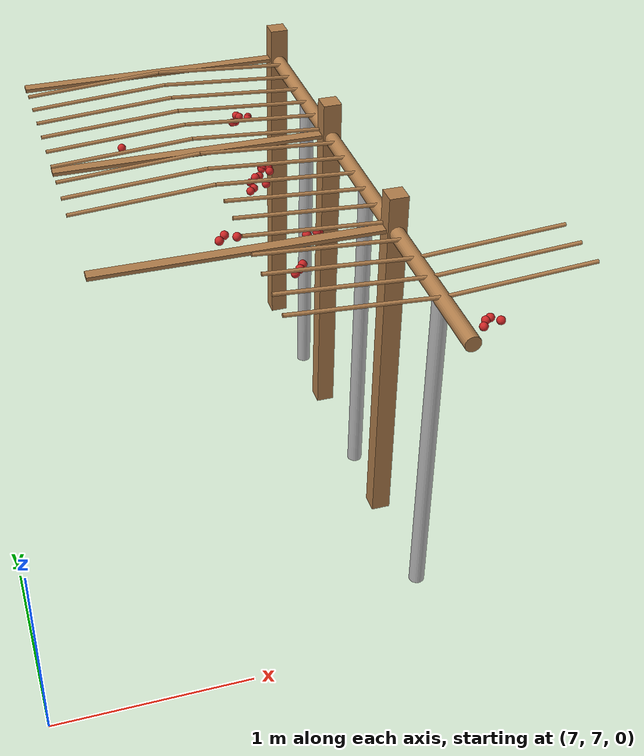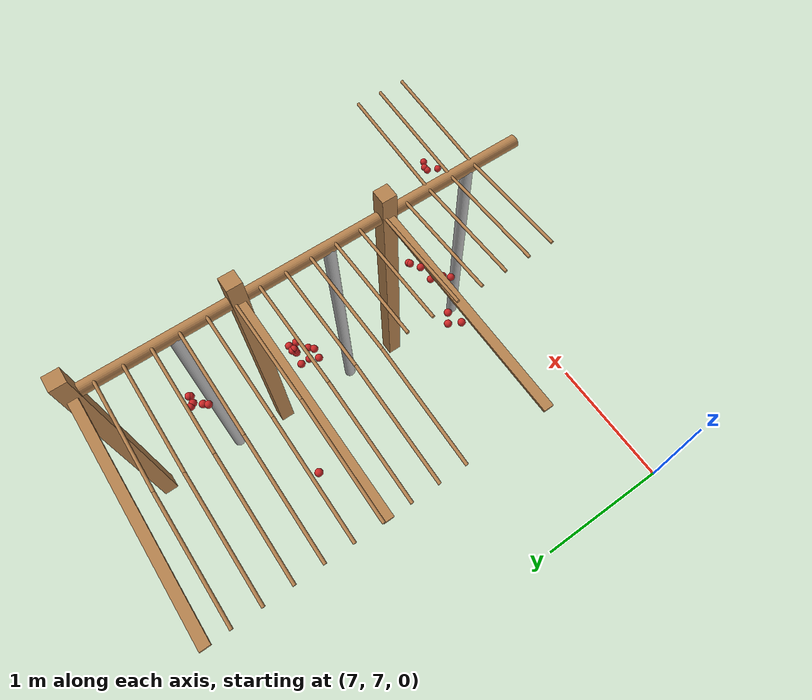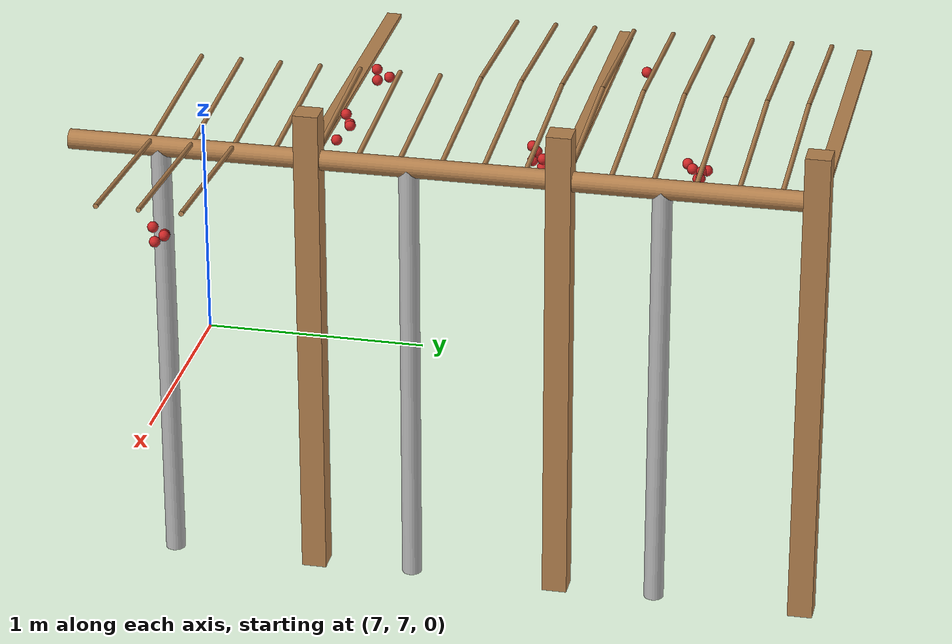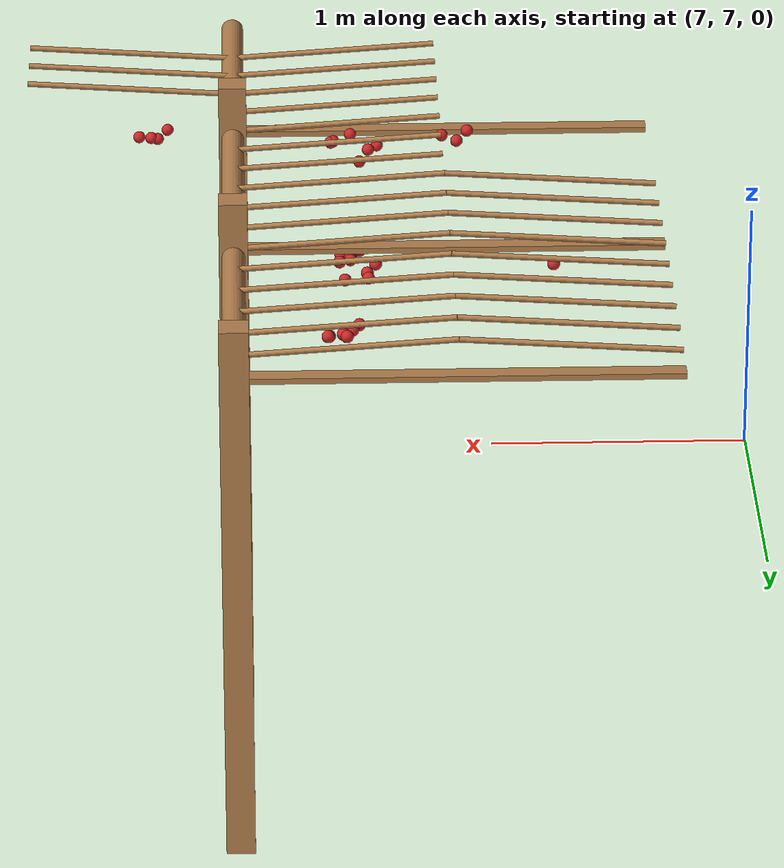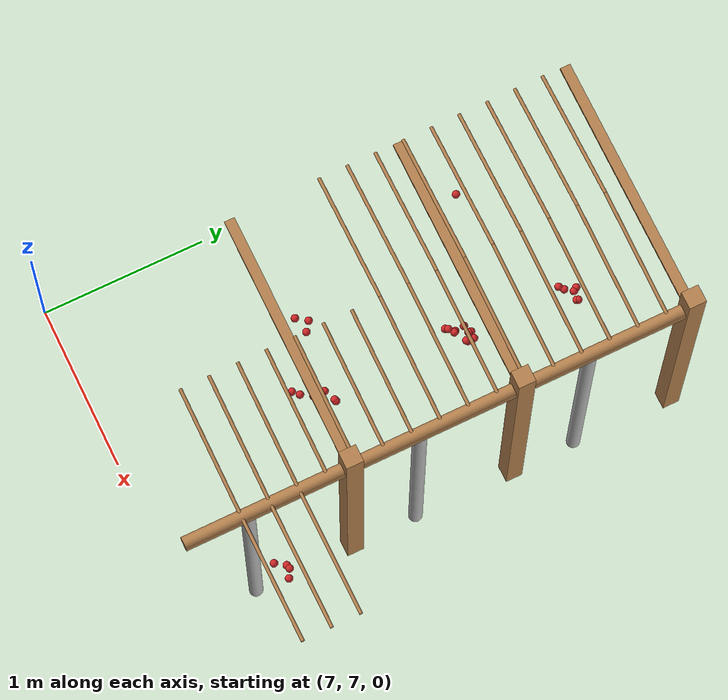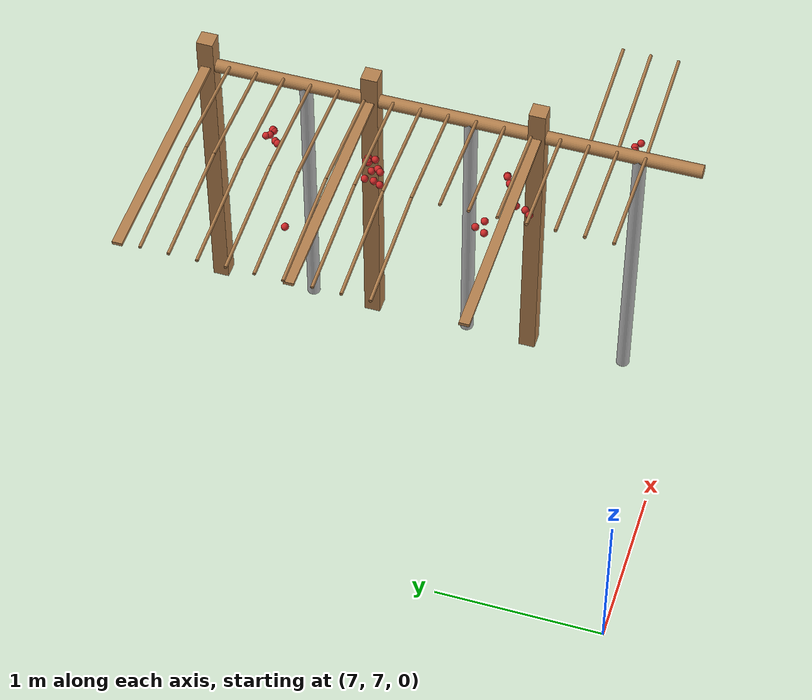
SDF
<sdf version="1.4">
 <model name="pergola">
  <include><name>post_74</name><pose>9.0 8.0 0 0 0 0</pose><uri>model://post</uri></include>
  <include><name>post_75</name><pose>9.0 9.0 0 0 0 0</pose><uri>model://post</uri></include>
  <include><name>post_76</name><pose>9.0 10.0 0 0 0 0</pose><uri>model://post</uri></include>
  <link name="beam_63">
   <pose>8.25 8.0 1.81 0 0 0</pose>
   <collision name="collision"><geometry><box><size>1.5 0.06 0.02</size></box></geometry></collision>
   <visual name="visual">
    <geometry><box><size>1.5 0.06 0.02</size></box></geometry>
    <material><script><name>Gazebo/Wood</name></script></material>
   </visual>
   <inertial>
    <mass>5</mass>
    <inertia>
     <ixx>0.0016666666666666668</ixx>
     <ixy>0.0</ixy>
     <ixz>0.0</ixz>
     <iyy>0.9390000000000001</iyy>
     <iyz>0.0</iyz>
     <izz>0.9376666666666665</izz>
    </inertia>
   </inertial>
  </link>
  <link name="beam_64">
   <pose>8.25 9.0 1.81 0 0 0</pose>
   <collision name="collision"><geometry><box><size>1.5 0.06 0.02</size></box></geometry></collision>
   <visual name="visual">
    <geometry><box><size>1.5 0.06 0.02</size></box></geometry>
    <material><script><name>Gazebo/Wood</name></script></material>
   </visual>
   <inertial>
    <mass>5</mass>
    <inertia>
     <ixx>0.0016666666666666668</ixx>
     <ixy>0.0</ixy>
     <ixz>0.0</ixz>
     <iyy>0.9390000000000001</iyy>
     <iyz>0.0</iyz>
     <izz>0.9376666666666665</izz>
    </inertia>
   </inertial>
  </link>
  <link name="beam_65">
   <pose>8.25 10.0 1.81 0 0 0</pose>
   <collision name="collision"><geometry><box><size>1.5 0.06 0.02</size></box></geometry></collision>
   <visual name="visual">
    <geometry><box><size>1.5 0.06 0.02</size></box></geometry>
    <material><script><name>Gazebo/Wood</name></script></material>
   </visual>
   <inertial>
    <mass>5</mass>
    <inertia>
     <ixx>0.0016666666666666668</ixx>
     <ixy>0.0</ixy>
     <ixz>0.0</ixz>
     <iyy>0.9390000000000001</iyy>
     <iyz>0.0</iyz>
     <izz>0.9376666666666665</izz>
    </inertia>
   </inertial>
  </link>
  <include><name>tree_67</name><pose>9.0 7.4 0 0 0 0</pose><uri>model://tree_trunk</uri></include>
  <include><name>tree_68</name><pose>9.0 8.4 0 0 0 0</pose><uri>model://tree_trunk</uri></include>
  <include><name>tree_69</name><pose>9.0 9.4 0 0 0 0</pose><uri>model://tree_trunk</uri></include>
  <link name="baseBranch_67">
   <pose>9.0 7.5 1.8 1.5707963267948966 0 0</pose>
   <collision name="collision">
    <geometry><cylinder><radius>0.04</radius><length>0.94</length></cylinder></geometry>
   </collision>
   <visual name="visual">
    <geometry><cylinder><radius>0.04</radius><length>0.94</length></cylinder></geometry>
    <material><script><name>Gazebo/WoodFloor</name></script></material>
   </visual>
   <inertial>
    <mass>10</mass>
    <inertia>
     <ixx>0.7403333333333334</ixx>
     <ixy>0.0</ixy>
     <ixz>0.0</ixz>
     <iyy>0.7403333333333334</iyy>
     <iyz>0.0</iyz>
     <izz>0.008</izz>
    </inertia>
   </inertial>
  </link>
  <link name="baseBranch_68">
   <pose>9.0 8.5 1.8 1.5707963267948966 0 0</pose>
   <collision name="collision">
    <geometry><cylinder><radius>0.04</radius><length>0.94</length></cylinder></geometry>
   </collision>
   <visual name="visual">
    <geometry><cylinder><radius>0.04</radius><length>0.94</length></cylinder></geometry>
    <material><script><name>Gazebo/WoodFloor</name></script></material>
   </visual>
   <inertial>
    <mass>10</mass>
    <inertia>
     <ixx>0.7403333333333334</ixx>
     <ixy>0.0</ixy>
     <ixz>0.0</ixz>
     <iyy>0.7403333333333334</iyy>
     <iyz>0.0</iyz>
     <izz>0.008</izz>
    </inertia>
   </inertial>
  </link>
  <link name="baseBranch_69">
   <pose>9.0 9.5 1.8 1.5707963267948966 0 0</pose>
   <collision name="collision">
    <geometry><cylinder><radius>0.04</radius><length>0.94</length></cylinder></geometry>
   </collision>
   <visual name="visual">
    <geometry><cylinder><radius>0.04</radius><length>0.94</length></cylinder></geometry>
    <material><script><name>Gazebo/WoodFloor</name></script></material>
   </visual>
   <inertial>
    <mass>10</mass>
    <inertia>
     <ixx>0.7403333333333334</ixx>
     <ixy>0.0</ixy>
     <ixz>0.0</ixz>
     <iyy>0.7403333333333334</iyy>
     <iyz>0.0</iyz>
     <izz>0.008</izz>
    </inertia>
   </inertial>
  </link>
  <link name="vine_689">
   <pose>8.625 7.363333333333333 1.85 0 -1.5042281630190728 0</pose>
   <collision name="collision">
    <geometry><cylinder><radius>0.01</radius><length>0.7516648189186453</length></cylinder></geometry>
   </collision>
   <visual name="visual">
    <geometry><cylinder><radius>0.01</radius><length>0.7516648189186453</length></cylinder></geometry>
    <material><script><name>Gazebo/WoodFloor</name></script></material>
   </visual>
   <inertial>
    <mass>5</mass>
    <inertia>
     <ixx>0.23554166666666657</ixx>
     <ixy>0.0</ixy>
     <ixz>0.0</ixz>
     <iyy>0.23554166666666657</iyy>
     <iyz>0.0</iyz>
     <izz>0.00025</izz>
    </inertia>
   </inertial>
  </link>
  <link name="vine_691">
   <pose>8.625 7.53 1.85 0 -1.5042281630190728 0</pose>
   <collision name="collision">
    <geometry><cylinder><radius>0.01</radius><length>0.7516648189186453</length></cylinder></geometry>
   </collision>
   <visual name="visual">
    <geometry><cylinder><radius>0.01</radius><length>0.7516648189186453</length></cylinder></geometry>
    <material><script><name>Gazebo/WoodFloor</name></script></material>
   </visual>
   <inertial>
    <mass>5</mass>
    <inertia>
     <ixx>0.23554166666666657</ixx>
     <ixy>0.0</ixy>
     <ixz>0.0</ixz>
     <iyy>0.23554166666666657</iyy>
     <iyz>0.0</iyz>
     <izz>0.00025</izz>
    </inertia>
   </inertial>
  </link>
  <link name="vine_693">
   <pose>8.625 7.696666666666666 1.85 0 -1.5042281630190728 0</pose>
   <collision name="collision">
    <geometry><cylinder><radius>0.01</radius><length>0.7516648189186453</length></cylinder></geometry>
   </collision>
   <visual name="visual">
    <geometry><cylinder><radius>0.01</radius><length>0.7516648189186453</length></cylinder></geometry>
    <material><script><name>Gazebo/WoodFloor</name></script></material>
   </visual>
   <inertial>
    <mass>5</mass>
    <inertia>
     <ixx>0.23554166666666657</ixx>
     <ixy>0.0</ixy>
     <ixz>0.0</ixz>
     <iyy>0.23554166666666657</iyy>
     <iyz>0.0</iyz>
     <izz>0.00025</izz>
    </inertia>
   </inertial>
  </link>
  <link name="vine_695">
   <pose>8.625 7.863333333333333 1.85 0 -1.5042281630190728 0</pose>
   <collision name="collision">
    <geometry><cylinder><radius>0.01</radius><length>0.7516648189186453</length></cylinder></geometry>
   </collision>
   <visual name="visual">
    <geometry><cylinder><radius>0.01</radius><length>0.7516648189186453</length></cylinder></geometry>
    <material><script><name>Gazebo/WoodFloor</name></script></material>
   </visual>
   <inertial>
    <mass>5</mass>
    <inertia>
     <ixx>0.23554166666666657</ixx>
     <ixy>0.0</ixy>
     <ixz>0.0</ixz>
     <iyy>0.23554166666666657</iyy>
     <iyz>0.0</iyz>
     <izz>0.00025</izz>
    </inertia>
   </inertial>
  </link>
  <link name="vine_697">
   <pose>8.625 8.03 1.85 0 -1.5042281630190728 0</pose>
   <collision name="collision">
    <geometry><cylinder><radius>0.01</radius><length>0.7516648189186453</length></cylinder></geometry>
   </collision>
   <visual name="visual">
    <geometry><cylinder><radius>0.01</radius><length>0.7516648189186453</length></cylinder></geometry>
    <material><script><name>Gazebo/WoodFloor</name></script></material>
   </visual>
   <inertial>
    <mass>5</mass>
    <inertia>
     <ixx>0.23554166666666657</ixx>
     <ixy>0.0</ixy>
     <ixz>0.0</ixz>
     <iyy>0.23554166666666657</iyy>
     <iyz>0.0</iyz>
     <izz>0.00025</izz>
    </inertia>
   </inertial>
  </link>
  <link name="vine_699">
   <pose>8.625 8.196666666666665 1.85 0 -1.5042281630190728 0</pose>
   <collision name="collision">
    <geometry><cylinder><radius>0.01</radius><length>0.7516648189186453</length></cylinder></geometry>
   </collision>
   <visual name="visual">
    <geometry><cylinder><radius>0.01</radius><length>0.7516648189186453</length></cylinder></geometry>
    <material><script><name>Gazebo/WoodFloor</name></script></material>
   </visual>
   <inertial>
    <mass>5</mass>
    <inertia>
     <ixx>0.23554166666666657</ixx>
     <ixy>0.0</ixy>
     <ixz>0.0</ixz>
     <iyy>0.23554166666666657</iyy>
     <iyz>0.0</iyz>
     <izz>0.00025</izz>
    </inertia>
   </inertial>
  </link>
  <link name="vine_701">
   <pose>8.625 8.363333333333332 1.85 0 -1.5042281630190728 0</pose>
   <collision name="collision">
    <geometry><cylinder><radius>0.01</radius><length>0.7516648189186453</length></cylinder></geometry>
   </collision>
   <visual name="visual">
    <geometry><cylinder><radius>0.01</radius><length>0.7516648189186453</length></cylinder></geometry>
    <material><script><name>Gazebo/WoodFloor</name></script></material>
   </visual>
   <inertial>
    <mass>5</mass>
    <inertia>
     <ixx>0.23554166666666657</ixx>
     <ixy>0.0</ixy>
     <ixz>0.0</ixz>
     <iyy>0.23554166666666657</iyy>
     <iyz>0.0</iyz>
     <izz>0.00025</izz>
    </inertia>
   </inertial>
  </link>
  <link name="vine_702">
   <pose>7.875 8.53 1.85 0 1.5042281630190728 0</pose>
   <collision name="collision">
    <geometry><cylinder><radius>0.01</radius><length>0.7516648189186453</length></cylinder></geometry>
   </collision>
   <visual name="visual">
    <geometry><cylinder><radius>0.01</radius><length>0.7516648189186453</length></cylinder></geometry>
    <material><script><name>Gazebo/WoodFloor</name></script></material>
   </visual>
   <inertial>
    <mass>5</mass>
    <inertia>
     <ixx>0.23554166666666657</ixx>
     <ixy>0.0</ixy>
     <ixz>0.0</ixz>
     <iyy>0.23554166666666657</iyy>
     <iyz>0.0</iyz>
     <izz>0.00025</izz>
    </inertia>
   </inertial>
  </link>
  <link name="vine_703">
   <pose>8.625 8.53 1.85 0 -1.5042281630190728 0</pose>
   <collision name="collision">
    <geometry><cylinder><radius>0.01</radius><length>0.7516648189186453</length></cylinder></geometry>
   </collision>
   <visual name="visual">
    <geometry><cylinder><radius>0.01</radius><length>0.7516648189186453</length></cylinder></geometry>
    <material><script><name>Gazebo/WoodFloor</name></script></material>
   </visual>
   <inertial>
    <mass>5</mass>
    <inertia>
     <ixx>0.23554166666666657</ixx>
     <ixy>0.0</ixy>
     <ixz>0.0</ixz>
     <iyy>0.23554166666666657</iyy>
     <iyz>0.0</iyz>
     <izz>0.00025</izz>
    </inertia>
   </inertial>
  </link>
  <link name="vine_704">
   <pose>7.875 8.696666666666665 1.85 0 1.5042281630190728 0</pose>
   <collision name="collision">
    <geometry><cylinder><radius>0.01</radius><length>0.7516648189186453</length></cylinder></geometry>
   </collision>
   <visual name="visual">
    <geometry><cylinder><radius>0.01</radius><length>0.7516648189186453</length></cylinder></geometry>
    <material><script><name>Gazebo/WoodFloor</name></script></material>
   </visual>
   <inertial>
    <mass>5</mass>
    <inertia>
     <ixx>0.23554166666666657</ixx>
     <ixy>0.0</ixy>
     <ixz>0.0</ixz>
     <iyy>0.23554166666666657</iyy>
     <iyz>0.0</iyz>
     <izz>0.00025</izz>
    </inertia>
   </inertial>
  </link>
  <link name="vine_705">
   <pose>8.625 8.696666666666665 1.85 0 -1.5042281630190728 0</pose>
   <collision name="collision">
    <geometry><cylinder><radius>0.01</radius><length>0.7516648189186453</length></cylinder></geometry>
   </collision>
   <visual name="visual">
    <geometry><cylinder><radius>0.01</radius><length>0.7516648189186453</length></cylinder></geometry>
    <material><script><name>Gazebo/WoodFloor</name></script></material>
   </visual>
   <inertial>
    <mass>5</mass>
    <inertia>
     <ixx>0.23554166666666657</ixx>
     <ixy>0.0</ixy>
     <ixz>0.0</ixz>
     <iyy>0.23554166666666657</iyy>
     <iyz>0.0</iyz>
     <izz>0.00025</izz>
    </inertia>
   </inertial>
  </link>
  <link name="vine_706">
   <pose>7.875 8.863333333333332 1.85 0 1.5042281630190728 0</pose>
   <collision name="collision">
    <geometry><cylinder><radius>0.01</radius><length>0.7516648189186453</length></cylinder></geometry>
   </collision>
   <visual name="visual">
    <geometry><cylinder><radius>0.01</radius><length>0.7516648189186453</length></cylinder></geometry>
    <material><script><name>Gazebo/WoodFloor</name></script></material>
   </visual>
   <inertial>
    <mass>5</mass>
    <inertia>
     <ixx>0.23554166666666657</ixx>
     <ixy>0.0</ixy>
     <ixz>0.0</ixz>
     <iyy>0.23554166666666657</iyy>
     <iyz>0.0</iyz>
     <izz>0.00025</izz>
    </inertia>
   </inertial>
  </link>
  <link name="vine_707">
   <pose>8.625 8.863333333333332 1.85 0 -1.5042281630190728 0</pose>
   <collision name="collision">
    <geometry><cylinder><radius>0.01</radius><length>0.7516648189186453</length></cylinder></geometry>
   </collision>
   <visual name="visual">
    <geometry><cylinder><radius>0.01</radius><length>0.7516648189186453</length></cylinder></geometry>
    <material><script><name>Gazebo/WoodFloor</name></script></material>
   </visual>
   <inertial>
    <mass>5</mass>
    <inertia>
     <ixx>0.23554166666666657</ixx>
     <ixy>0.0</ixy>
     <ixz>0.0</ixz>
     <iyy>0.23554166666666657</iyy>
     <iyz>0.0</iyz>
     <izz>0.00025</izz>
    </inertia>
   </inertial>
  </link>
  <link name="vine_708">
   <pose>7.875 9.03 1.85 0 1.5042281630190728 0</pose>
   <collision name="collision">
    <geometry><cylinder><radius>0.01</radius><length>0.7516648189186453</length></cylinder></geometry>
   </collision>
   <visual name="visual">
    <geometry><cylinder><radius>0.01</radius><length>0.7516648189186453</length></cylinder></geometry>
    <material><script><name>Gazebo/WoodFloor</name></script></material>
   </visual>
   <inertial>
    <mass>5</mass>
    <inertia>
     <ixx>0.23554166666666657</ixx>
     <ixy>0.0</ixy>
     <ixz>0.0</ixz>
     <iyy>0.23554166666666657</iyy>
     <iyz>0.0</iyz>
     <izz>0.00025</izz>
    </inertia>
   </inertial>
  </link>
  <link name="vine_709">
   <pose>8.625 9.03 1.85 0 -1.5042281630190728 0</pose>
   <collision name="collision">
    <geometry><cylinder><radius>0.01</radius><length>0.7516648189186453</length></cylinder></geometry>
   </collision>
   <visual name="visual">
    <geometry><cylinder><radius>0.01</radius><length>0.7516648189186453</length></cylinder></geometry>
    <material><script><name>Gazebo/WoodFloor</name></script></material>
   </visual>
   <inertial>
    <mass>5</mass>
    <inertia>
     <ixx>0.23554166666666657</ixx>
     <ixy>0.0</ixy>
     <ixz>0.0</ixz>
     <iyy>0.23554166666666657</iyy>
     <iyz>0.0</iyz>
     <izz>0.00025</izz>
    </inertia>
   </inertial>
  </link>
  <link name="vine_710">
   <pose>7.875 9.196666666666665 1.85 0 1.5042281630190728 0</pose>
   <collision name="collision">
    <geometry><cylinder><radius>0.01</radius><length>0.7516648189186453</length></cylinder></geometry>
   </collision>
   <visual name="visual">
    <geometry><cylinder><radius>0.01</radius><length>0.7516648189186453</length></cylinder></geometry>
    <material><script><name>Gazebo/WoodFloor</name></script></material>
   </visual>
   <inertial>
    <mass>5</mass>
    <inertia>
     <ixx>0.23554166666666657</ixx>
     <ixy>0.0</ixy>
     <ixz>0.0</ixz>
     <iyy>0.23554166666666657</iyy>
     <iyz>0.0</iyz>
     <izz>0.00025</izz>
    </inertia>
   </inertial>
  </link>
  <link name="vine_711">
   <pose>8.625 9.196666666666665 1.85 0 -1.5042281630190728 0</pose>
   <collision name="collision">
    <geometry><cylinder><radius>0.01</radius><length>0.7516648189186453</length></cylinder></geometry>
   </collision>
   <visual name="visual">
    <geometry><cylinder><radius>0.01</radius><length>0.7516648189186453</length></cylinder></geometry>
    <material><script><name>Gazebo/WoodFloor</name></script></material>
   </visual>
   <inertial>
    <mass>5</mass>
    <inertia>
     <ixx>0.23554166666666657</ixx>
     <ixy>0.0</ixy>
     <ixz>0.0</ixz>
     <iyy>0.23554166666666657</iyy>
     <iyz>0.0</iyz>
     <izz>0.00025</izz>
    </inertia>
   </inertial>
  </link>
  <link name="vine_712">
   <pose>7.875 9.363333333333332 1.85 0 1.5042281630190728 0</pose>
   <collision name="collision">
    <geometry><cylinder><radius>0.01</radius><length>0.7516648189186453</length></cylinder></geometry>
   </collision>
   <visual name="visual">
    <geometry><cylinder><radius>0.01</radius><length>0.7516648189186453</length></cylinder></geometry>
    <material><script><name>Gazebo/WoodFloor</name></script></material>
   </visual>
   <inertial>
    <mass>5</mass>
    <inertia>
     <ixx>0.23554166666666657</ixx>
     <ixy>0.0</ixy>
     <ixz>0.0</ixz>
     <iyy>0.23554166666666657</iyy>
     <iyz>0.0</iyz>
     <izz>0.00025</izz>
    </inertia>
   </inertial>
  </link>
  <link name="vine_713">
   <pose>8.625 9.363333333333332 1.85 0 -1.5042281630190728 0</pose>
   <collision name="collision">
    <geometry><cylinder><radius>0.01</radius><length>0.7516648189186453</length></cylinder></geometry>
   </collision>
   <visual name="visual">
    <geometry><cylinder><radius>0.01</radius><length>0.7516648189186453</length></cylinder></geometry>
    <material><script><name>Gazebo/WoodFloor</name></script></material>
   </visual>
   <inertial>
    <mass>5</mass>
    <inertia>
     <ixx>0.23554166666666657</ixx>
     <ixy>0.0</ixy>
     <ixz>0.0</ixz>
     <iyy>0.23554166666666657</iyy>
     <iyz>0.0</iyz>
     <izz>0.00025</izz>
    </inertia>
   </inertial>
  </link>
  <link name="vine_714">
   <pose>7.875 9.53 1.85 0 1.5042281630190728 0</pose>
   <collision name="collision">
    <geometry><cylinder><radius>0.01</radius><length>0.7516648189186453</length></cylinder></geometry>
   </collision>
   <visual name="visual">
    <geometry><cylinder><radius>0.01</radius><length>0.7516648189186453</length></cylinder></geometry>
    <material><script><name>Gazebo/WoodFloor</name></script></material>
   </visual>
   <inertial>
    <mass>5</mass>
    <inertia>
     <ixx>0.23554166666666657</ixx>
     <ixy>0.0</ixy>
     <ixz>0.0</ixz>
     <iyy>0.23554166666666657</iyy>
     <iyz>0.0</iyz>
     <izz>0.00025</izz>
    </inertia>
   </inertial>
  </link>
  <link name="vine_715">
   <pose>8.625 9.53 1.85 0 -1.5042281630190728 0</pose>
   <collision name="collision">
    <geometry><cylinder><radius>0.01</radius><length>0.7516648189186453</length></cylinder></geometry>
   </collision>
   <visual name="visual">
    <geometry><cylinder><radius>0.01</radius><length>0.7516648189186453</length></cylinder></geometry>
    <material><script><name>Gazebo/WoodFloor</name></script></material>
   </visual>
   <inertial>
    <mass>5</mass>
    <inertia>
     <ixx>0.23554166666666657</ixx>
     <ixy>0.0</ixy>
     <ixz>0.0</ixz>
     <iyy>0.23554166666666657</iyy>
     <iyz>0.0</iyz>
     <izz>0.00025</izz>
    </inertia>
   </inertial>
  </link>
  <link name="vine_716">
   <pose>7.875 9.696666666666665 1.85 0 1.5042281630190728 0</pose>
   <collision name="collision">
    <geometry><cylinder><radius>0.01</radius><length>0.7516648189186453</length></cylinder></geometry>
   </collision>
   <visual name="visual">
    <geometry><cylinder><radius>0.01</radius><length>0.7516648189186453</length></cylinder></geometry>
    <material><script><name>Gazebo/WoodFloor</name></script></material>
   </visual>
   <inertial>
    <mass>5</mass>
    <inertia>
     <ixx>0.23554166666666657</ixx>
     <ixy>0.0</ixy>
     <ixz>0.0</ixz>
     <iyy>0.23554166666666657</iyy>
     <iyz>0.0</iyz>
     <izz>0.00025</izz>
    </inertia>
   </inertial>
  </link>
  <link name="vine_717">
   <pose>8.625 9.696666666666665 1.85 0 -1.5042281630190728 0</pose>
   <collision name="collision">
    <geometry><cylinder><radius>0.01</radius><length>0.7516648189186453</length></cylinder></geometry>
   </collision>
   <visual name="visual">
    <geometry><cylinder><radius>0.01</radius><length>0.7516648189186453</length></cylinder></geometry>
    <material><script><name>Gazebo/WoodFloor</name></script></material>
   </visual>
   <inertial>
    <mass>5</mass>
    <inertia>
     <ixx>0.23554166666666657</ixx>
     <ixy>0.0</ixy>
     <ixz>0.0</ixz>
     <iyy>0.23554166666666657</iyy>
     <iyz>0.0</iyz>
     <izz>0.00025</izz>
    </inertia>
   </inertial>
  </link>
  <link name="vine_718">
   <pose>7.875 9.863333333333332 1.85 0 1.5042281630190728 0</pose>
   <collision name="collision">
    <geometry><cylinder><radius>0.01</radius><length>0.7516648189186453</length></cylinder></geometry>
   </collision>
   <visual name="visual">
    <geometry><cylinder><radius>0.01</radius><length>0.7516648189186453</length></cylinder></geometry>
    <material><script><name>Gazebo/WoodFloor</name></script></material>
   </visual>
   <inertial>
    <mass>5</mass>
    <inertia>
     <ixx>0.23554166666666657</ixx>
     <ixy>0.0</ixy>
     <ixz>0.0</ixz>
     <iyy>0.23554166666666657</iyy>
     <iyz>0.0</iyz>
     <izz>0.00025</izz>
    </inertia>
   </inertial>
  </link>
  <link name="vine_719">
   <pose>8.625 9.863333333333332 1.85 0 -1.5042281630190728 0</pose>
   <collision name="collision">
    <geometry><cylinder><radius>0.01</radius><length>0.7516648189186453</length></cylinder></geometry>
   </collision>
   <visual name="visual">
    <geometry><cylinder><radius>0.01</radius><length>0.7516648189186453</length></cylinder></geometry>
    <material><script><name>Gazebo/WoodFloor</name></script></material>
   </visual>
   <inertial>
    <mass>5</mass>
    <inertia>
     <ixx>0.23554166666666657</ixx>
     <ixy>0.0</ixy>
     <ixz>0.0</ixz>
     <iyy>0.23554166666666657</iyy>
     <iyz>0.0</iyz>
     <izz>0.00025</izz>
    </inertia>
   </inertial>
  </link>
  <link name="vine_808">
   <pose>9.375 7.363333333333333 1.85 0 1.5042281630190728 0</pose>
   <collision name="collision">
    <geometry><cylinder><radius>0.01</radius><length>0.7516648189186453</length></cylinder></geometry>
   </collision>
   <visual name="visual">
    <geometry><cylinder><radius>0.01</radius><length>0.7516648189186453</length></cylinder></geometry>
    <material><script><name>Gazebo/WoodFloor</name></script></material>
   </visual>
   <inertial>
    <mass>5</mass>
    <inertia>
     <ixx>0.23554166666666657</ixx>
     <ixy>0.0</ixy>
     <ixz>0.0</ixz>
     <iyy>0.23554166666666657</iyy>
     <iyz>0.0</iyz>
     <izz>0.00025</izz>
    </inertia>
   </inertial>
  </link>
  <link name="vine_810">
   <pose>9.375 7.53 1.85 0 1.5042281630190728 0</pose>
   <collision name="collision">
    <geometry><cylinder><radius>0.01</radius><length>0.7516648189186453</length></cylinder></geometry>
   </collision>
   <visual name="visual">
    <geometry><cylinder><radius>0.01</radius><length>0.7516648189186453</length></cylinder></geometry>
    <material><script><name>Gazebo/WoodFloor</name></script></material>
   </visual>
   <inertial>
    <mass>5</mass>
    <inertia>
     <ixx>0.23554166666666657</ixx>
     <ixy>0.0</ixy>
     <ixz>0.0</ixz>
     <iyy>0.23554166666666657</iyy>
     <iyz>0.0</iyz>
     <izz>0.00025</izz>
    </inertia>
   </inertial>
  </link>
  <link name="vine_812">
   <pose>9.375 7.696666666666666 1.85 0 1.5042281630190728 0</pose>
   <collision name="collision">
    <geometry><cylinder><radius>0.01</radius><length>0.7516648189186453</length></cylinder></geometry>
   </collision>
   <visual name="visual">
    <geometry><cylinder><radius>0.01</radius><length>0.7516648189186453</length></cylinder></geometry>
    <material><script><name>Gazebo/WoodFloor</name></script></material>
   </visual>
   <inertial>
    <mass>5</mass>
    <inertia>
     <ixx>0.23554166666666657</ixx>
     <ixy>0.0</ixy>
     <ixz>0.0</ixz>
     <iyy>0.23554166666666657</iyy>
     <iyz>0.0</iyz>
     <izz>0.00025</izz>
    </inertia>
   </inertial>
  </link>
  <link name="fruit_0">
   <pose>8.574796913874893 8.04895319028267 1.814411705865465 0 0 0</pose>
   <collision name="fruit_collision_0"><geometry><sphere><radius>0.022</radius></sphere></geometry></collision>
   <visual name="visual">
    <geometry><sphere><radius>0.022</radius></sphere></geometry>
    <material><script><name>Gazebo/Red</name></script></material>
   </visual>
   <inertial>
    <mass>0.05</mass>
    <inertia>
     <ixx>9.679999999999999e-06</ixx>
     <ixy>0.0</ixy>
     <ixz>0.0</ixz>
     <iyy>9.679999999999999e-06</iyy>
     <iyz>0.0</iyz>
     <izz>9.679999999999999e-06</izz>
    </inertia>
   </inertial>
   <sensor name="fruit_contact_0" type="contact">
    <contact><collision>fruit_collision_0</collision></contact>
   </sensor>
  </link>
  <link name="fruit_24">
   <pose>8.151789421558503 8.077275944412605 1.8368361129361965 0 0 0</pose>
   <collision name="fruit_collision_24"><geometry><sphere><radius>0.022</radius></sphere></geometry></collision>
   <visual name="visual">
    <geometry><sphere><radius>0.022</radius></sphere></geometry>
    <material><script><name>Gazebo/Red</name></script></material>
   </visual>
   <inertial>
    <mass>0.05</mass>
    <inertia>
     <ixx>9.679999999999999e-06</ixx>
     <ixy>0.0</ixy>
     <ixz>0.0</ixz>
     <iyy>9.679999999999999e-06</iyy>
     <iyz>0.0</iyz>
     <izz>9.679999999999999e-06</izz>
    </inertia>
   </inertial>
   <sensor name="fruit_contact_24" type="contact">
    <contact><collision>fruit_collision_24</collision></contact>
   </sensor>
  </link>
  <link name="fruit_39">
   <pose>8.500812690215426 8.795129883401557 1.64771932281716 0 0 0</pose>
   <collision name="fruit_collision_39"><geometry><sphere><radius>0.022</radius></sphere></geometry></collision>
   <visual name="visual">
    <geometry><sphere><radius>0.022</radius></sphere></geometry>
    <material><script><name>Gazebo/Red</name></script></material>
   </visual>
   <inertial>
    <mass>0.05</mass>
    <inertia>
     <ixx>9.679999999999999e-06</ixx>
     <ixy>0.0</ixy>
     <ixz>0.0</ixz>
     <iyy>9.679999999999999e-06</iyy>
     <iyz>0.0</iyz>
     <izz>9.679999999999999e-06</izz>
    </inertia>
   </inertial>
   <sensor name="fruit_contact_39" type="contact">
    <contact><collision>fruit_collision_39</collision></contact>
   </sensor>
  </link>
  <link name="fruit_57">
   <pose>8.528466705295422 8.799518841807481 1.7231837676563164 0 0 0</pose>
   <collision name="fruit_collision_57"><geometry><sphere><radius>0.022</radius></sphere></geometry></collision>
   <visual name="visual">
    <geometry><sphere><radius>0.022</radius></sphere></geometry>
    <material><script><name>Gazebo/Red</name></script></material>
   </visual>
   <inertial>
    <mass>0.05</mass>
    <inertia>
     <ixx>9.679999999999999e-06</ixx>
     <ixy>0.0</ixy>
     <ixz>0.0</ixz>
     <iyy>9.679999999999999e-06</iyy>
     <iyz>0.0</iyz>
     <izz>9.679999999999999e-06</izz>
    </inertia>
   </inertial>
   <sensor name="fruit_contact_57" type="contact">
    <contact><collision>fruit_collision_57</collision></contact>
   </sensor>
  </link>
  <link name="fruit_70">
   <pose>9.24542239678349 7.430190711310521 1.5652316612018242 0 0 0</pose>
   <collision name="fruit_collision_70"><geometry><sphere><radius>0.022</radius></sphere></geometry></collision>
   <visual name="visual">
    <geometry><sphere><radius>0.022</radius></sphere></geometry>
    <material><script><name>Gazebo/Red</name></script></material>
   </visual>
   <inertial>
    <mass>0.05</mass>
    <inertia>
     <ixx>9.679999999999999e-06</ixx>
     <ixy>0.0</ixy>
     <ixz>0.0</ixz>
     <iyy>9.679999999999999e-06</iyy>
     <iyz>0.0</iyz>
     <izz>9.679999999999999e-06</izz>
    </inertia>
   </inertial>
   <sensor name="fruit_contact_70" type="contact">
    <contact><collision>fruit_collision_70</collision></contact>
   </sensor>
  </link>
  <link name="fruit_80">
   <pose>8.572113782921647 9.431982974123219 1.7230544742244904 0 0 0</pose>
   <collision name="fruit_collision_80"><geometry><sphere><radius>0.022</radius></sphere></geometry></collision>
   <visual name="visual">
    <geometry><sphere><radius>0.022</radius></sphere></geometry>
    <material><script><name>Gazebo/Red</name></script></material>
   </visual>
   <inertial>
    <mass>0.05</mass>
    <inertia>
     <ixx>9.679999999999999e-06</ixx>
     <ixy>0.0</ixy>
     <ixz>0.0</ixz>
     <iyy>9.679999999999999e-06</iyy>
     <iyz>0.0</iyz>
     <izz>9.679999999999999e-06</izz>
    </inertia>
   </inertial>
   <sensor name="fruit_contact_80" type="contact">
    <contact><collision>fruit_collision_80</collision></contact>
   </sensor>
  </link>
  <link name="fruit_98">
   <pose>8.4744992170003 7.903336319685117 1.7040208222470623 0 0 0</pose>
   <collision name="fruit_collision_98"><geometry><sphere><radius>0.022</radius></sphere></geometry></collision>
   <visual name="visual">
    <geometry><sphere><radius>0.022</radius></sphere></geometry>
    <material><script><name>Gazebo/Red</name></script></material>
   </visual>
   <inertial>
    <mass>0.05</mass>
    <inertia>
     <ixx>9.679999999999999e-06</ixx>
     <ixy>0.0</ixy>
     <ixz>0.0</ixz>
     <iyy>9.679999999999999e-06</iyy>
     <iyz>0.0</iyz>
     <izz>9.679999999999999e-06</izz>
    </inertia>
   </inertial>
   <sensor name="fruit_contact_98" type="contact">
    <contact><collision>fruit_collision_98</collision></contact>
   </sensor>
  </link>
  <link name="fruit_157">
   <pose>8.67605473053997 9.489567828007408 1.7083965185265988 0 0 0</pose>
   <collision name="fruit_collision_157"><geometry><sphere><radius>0.022</radius></sphere></geometry></collision>
   <visual name="visual">
    <geometry><sphere><radius>0.022</radius></sphere></geometry>
    <material><script><name>Gazebo/Red</name></script></material>
   </visual>
   <inertial>
    <mass>0.05</mass>
    <inertia>
     <ixx>9.679999999999999e-06</ixx>
     <ixy>0.0</ixy>
     <ixz>0.0</ixz>
     <iyy>9.679999999999999e-06</iyy>
     <iyz>0.0</iyz>
     <izz>9.679999999999999e-06</izz>
    </inertia>
   </inertial>
   <sensor name="fruit_contact_157" type="contact">
    <contact><collision>fruit_collision_157</collision></contact>
   </sensor>
  </link>
  <link name="fruit_176">
   <pose>8.624165776546254 8.859545884156107 1.713637087324998 0 0 0</pose>
   <collision name="fruit_collision_176"><geometry><sphere><radius>0.022</radius></sphere></geometry></collision>
   <visual name="visual">
    <geometry><sphere><radius>0.022</radius></sphere></geometry>
    <material><script><name>Gazebo/Red</name></script></material>
   </visual>
   <inertial>
    <mass>0.05</mass>
    <inertia>
     <ixx>9.679999999999999e-06</ixx>
     <ixy>0.0</ixy>
     <ixz>0.0</ixz>
     <iyy>9.679999999999999e-06</iyy>
     <iyz>0.0</iyz>
     <izz>9.679999999999999e-06</izz>
    </inertia>
   </inertial>
   <sensor name="fruit_contact_176" type="contact">
    <contact><collision>fruit_collision_176</collision></contact>
   </sensor>
  </link>
  <link name="fruit_209">
   <pose>8.636318095976753 8.078580726121455 1.8008710326165351 0 0 0</pose>
   <collision name="fruit_collision_209"><geometry><sphere><radius>0.022</radius></sphere></geometry></collision>
   <visual name="visual">
    <geometry><sphere><radius>0.022</radius></sphere></geometry>
    <material><script><name>Gazebo/Red</name></script></material>
   </visual>
   <inertial>
    <mass>0.05</mass>
    <inertia>
     <ixx>9.679999999999999e-06</ixx>
     <ixy>0.0</ixy>
     <ixz>0.0</ixz>
     <iyy>9.679999999999999e-06</iyy>
     <iyz>0.0</iyz>
     <izz>9.679999999999999e-06</izz>
    </inertia>
   </inertial>
   <sensor name="fruit_contact_209" type="contact">
    <contact><collision>fruit_collision_209</collision></contact>
   </sensor>
  </link>
  <link name="fruit_216">
   <pose>8.609936743783857 8.879387731913528 1.6275587486140761 0 0 0</pose>
   <collision name="fruit_collision_216"><geometry><sphere><radius>0.022</radius></sphere></geometry></collision>
   <visual name="visual">
    <geometry><sphere><radius>0.022</radius></sphere></geometry>
    <material><script><name>Gazebo/Red</name></script></material>
   </visual>
   <inertial>
    <mass>0.05</mass>
    <inertia>
     <ixx>9.679999999999999e-06</ixx>
     <ixy>0.0</ixy>
     <ixz>0.0</ixz>
     <iyy>9.679999999999999e-06</iyy>
     <iyz>0.0</iyz>
     <izz>9.679999999999999e-06</izz>
    </inertia>
   </inertial>
   <sensor name="fruit_contact_216" type="contact">
    <contact><collision>fruit_collision_216</collision></contact>
   </sensor>
  </link>
  <link name="fruit_228">
   <pose>9.281440299550972 7.487633598814879 1.554307250647087 0 0 0</pose>
   <collision name="fruit_collision_228"><geometry><sphere><radius>0.022</radius></sphere></geometry></collision>
   <visual name="visual">
    <geometry><sphere><radius>0.022</radius></sphere></geometry>
    <material><script><name>Gazebo/Red</name></script></material>
   </visual>
   <inertial>
    <mass>0.05</mass>
    <inertia>
     <ixx>9.679999999999999e-06</ixx>
     <ixy>0.0</ixy>
     <ixz>0.0</ixz>
     <iyy>9.679999999999999e-06</iyy>
     <iyz>0.0</iyz>
     <izz>9.679999999999999e-06</izz>
    </inertia>
   </inertial>
   <sensor name="fruit_contact_228" type="contact">
    <contact><collision>fruit_collision_228</collision></contact>
   </sensor>
  </link>
  <link name="fruit_239">
   <pose>8.540117763227276 7.998925017261018 1.683166903007716 0 0 0</pose>
   <collision name="fruit_collision_239"><geometry><sphere><radius>0.022</radius></sphere></geometry></collision>
   <visual name="visual">
    <geometry><sphere><radius>0.022</radius></sphere></geometry>
    <material><script><name>Gazebo/Red</name></script></material>
   </visual>
   <inertial>
    <mass>0.05</mass>
    <inertia>
     <ixx>9.679999999999999e-06</ixx>
     <ixy>0.0</ixy>
     <ixz>0.0</ixz>
     <iyy>9.679999999999999e-06</iyy>
     <iyz>0.0</iyz>
     <izz>9.679999999999999e-06</izz>
    </inertia>
   </inertial>
   <sensor name="fruit_contact_239" type="contact">
    <contact><collision>fruit_collision_239</collision></contact>
   </sensor>
  </link>
  <link name="fruit_282">
   <pose>8.629289795698364 8.90255335594117 1.7087119064747789 0 0 0</pose>
   <collision name="fruit_collision_282"><geometry><sphere><radius>0.022</radius></sphere></geometry></collision>
   <visual name="visual">
    <geometry><sphere><radius>0.022</radius></sphere></geometry>
    <material><script><name>Gazebo/Red</name></script></material>
   </visual>
   <inertial>
    <mass>0.05</mass>
    <inertia>
     <ixx>9.679999999999999e-06</ixx>
     <ixy>0.0</ixy>
     <ixz>0.0</ixz>
     <iyy>9.679999999999999e-06</iyy>
     <iyz>0.0</iyz>
     <izz>9.679999999999999e-06</izz>
    </inertia>
   </inertial>
   <sensor name="fruit_contact_282" type="contact">
    <contact><collision>fruit_collision_282</collision></contact>
   </sensor>
  </link>
  <link name="fruit_285">
   <pose>8.244620185930186 8.100495369606225 1.8299689875827592 0 0 0</pose>
   <collision name="fruit_collision_285"><geometry><sphere><radius>0.022</radius></sphere></geometry></collision>
   <visual name="visual">
    <geometry><sphere><radius>0.022</radius></sphere></geometry>
    <material><script><name>Gazebo/Red</name></script></material>
   </visual>
   <inertial>
    <mass>0.05</mass>
    <inertia>
     <ixx>9.679999999999999e-06</ixx>
     <ixy>0.0</ixy>
     <ixz>0.0</ixz>
     <iyy>9.679999999999999e-06</iyy>
     <iyz>0.0</iyz>
     <izz>9.679999999999999e-06</izz>
    </inertia>
   </inertial>
   <sensor name="fruit_contact_285" type="contact">
    <contact><collision>fruit_collision_285</collision></contact>
   </sensor>
  </link>
  <link name="fruit_287">
   <pose>8.595872539665065 9.454773306336344 1.713114999577511 0 0 0</pose>
   <collision name="fruit_collision_287"><geometry><sphere><radius>0.022</radius></sphere></geometry></collision>
   <visual name="visual">
    <geometry><sphere><radius>0.022</radius></sphere></geometry>
    <material><script><name>Gazebo/Red</name></script></material>
   </visual>
   <inertial>
    <mass>0.05</mass>
    <inertia>
     <ixx>9.679999999999999e-06</ixx>
     <ixy>0.0</ixy>
     <ixz>0.0</ixz>
     <iyy>9.679999999999999e-06</iyy>
     <iyz>0.0</iyz>
     <izz>9.679999999999999e-06</izz>
    </inertia>
   </inertial>
   <sensor name="fruit_contact_287" type="contact">
    <contact><collision>fruit_collision_287</collision></contact>
   </sensor>
  </link>
  <link name="fruit_291">
   <pose>8.507184369705666 7.935901634459569 1.7023968116213113 0 0 0</pose>
   <collision name="fruit_collision_291"><geometry><sphere><radius>0.022</radius></sphere></geometry></collision>
   <visual name="visual">
    <geometry><sphere><radius>0.022</radius></sphere></geometry>
    <material><script><name>Gazebo/Red</name></script></material>
   </visual>
   <inertial>
    <mass>0.05</mass>
    <inertia>
     <ixx>9.679999999999999e-06</ixx>
     <ixy>0.0</ixy>
     <ixz>0.0</ixz>
     <iyy>9.679999999999999e-06</iyy>
     <iyz>0.0</iyz>
     <izz>9.679999999999999e-06</izz>
    </inertia>
   </inertial>
   <sensor name="fruit_contact_291" type="contact">
    <contact><collision>fruit_collision_291</collision></contact>
   </sensor>
  </link>
  <link name="fruit_293">
   <pose>8.55669910417822 8.822367437379963 1.7143408847701522 0 0 0</pose>
   <collision name="fruit_collision_293"><geometry><sphere><radius>0.022</radius></sphere></geometry></collision>
   <visual name="visual">
    <geometry><sphere><radius>0.022</radius></sphere></geometry>
    <material><script><name>Gazebo/Red</name></script></material>
   </visual>
   <inertial>
    <mass>0.05</mass>
    <inertia>
     <ixx>9.679999999999999e-06</ixx>
     <ixy>0.0</ixy>
     <ixz>0.0</ixz>
     <iyy>9.679999999999999e-06</iyy>
     <iyz>0.0</iyz>
     <izz>9.679999999999999e-06</izz>
    </inertia>
   </inertial>
   <sensor name="fruit_contact_293" type="contact">
    <contact><collision>fruit_collision_293</collision></contact>
   </sensor>
  </link>
  <link name="fruit_303">
   <pose>8.589263453813398 8.889536444344484 1.7161234169653157 0 0 0</pose>
   <collision name="fruit_collision_303"><geometry><sphere><radius>0.022</radius></sphere></geometry></collision>
   <visual name="visual">
    <geometry><sphere><radius>0.022</radius></sphere></geometry>
    <material><script><name>Gazebo/Red</name></script></material>
   </visual>
   <inertial>
    <mass>0.05</mass>
    <inertia>
     <ixx>9.679999999999999e-06</ixx>
     <ixy>0.0</ixy>
     <ixz>0.0</ixz>
     <iyy>9.679999999999999e-06</iyy>
     <iyz>0.0</iyz>
     <izz>9.679999999999999e-06</izz>
    </inertia>
   </inertial>
   <sensor name="fruit_contact_303" type="contact">
    <contact><collision>fruit_collision_303</collision></contact>
   </sensor>
  </link>
  <link name="fruit_310">
   <pose>8.615455461354182 9.516202417528609 1.7196522711719138 0 0 0</pose>
   <collision name="fruit_collision_310"><geometry><sphere><radius>0.022</radius></sphere></geometry></collision>
   <visual name="visual">
    <geometry><sphere><radius>0.022</radius></sphere></geometry>
    <material><script><name>Gazebo/Red</name></script></material>
   </visual>
   <inertial>
    <mass>0.05</mass>
    <inertia>
     <ixx>9.679999999999999e-06</ixx>
     <ixy>0.0</ixy>
     <ixz>0.0</ixz>
     <iyy>9.679999999999999e-06</iyy>
     <iyz>0.0</iyz>
     <izz>9.679999999999999e-06</izz>
    </inertia>
   </inertial>
   <sensor name="fruit_contact_310" type="contact">
    <contact><collision>fruit_collision_310</collision></contact>
   </sensor>
  </link>
  <link name="fruit_311">
   <pose>8.53169304325484 8.840719133046669 1.6357381717813921 0 0 0</pose>
   <collision name="fruit_collision_311"><geometry><sphere><radius>0.022</radius></sphere></geometry></collision>
   <visual name="visual">
    <geometry><sphere><radius>0.022</radius></sphere></geometry>
    <material><script><name>Gazebo/Red</name></script></material>
   </visual>
   <inertial>
    <mass>0.05</mass>
    <inertia>
     <ixx>9.679999999999999e-06</ixx>
     <ixy>0.0</ixy>
     <ixz>0.0</ixz>
     <iyy>9.679999999999999e-06</iyy>
     <iyz>0.0</iyz>
     <izz>9.679999999999999e-06</izz>
    </inertia>
   </inertial>
   <sensor name="fruit_contact_311" type="contact">
    <contact><collision>fruit_collision_311</collision></contact>
   </sensor>
  </link>
  <link name="fruit_328">
   <pose>8.591872309188828 8.892263001121124 1.7201363957746498 0 0 0</pose>
   <collision name="fruit_collision_328"><geometry><sphere><radius>0.022</radius></sphere></geometry></collision>
   <visual name="visual">
    <geometry><sphere><radius>0.022</radius></sphere></geometry>
    <material><script><name>Gazebo/Red</name></script></material>
   </visual>
   <inertial>
    <mass>0.05</mass>
    <inertia>
     <ixx>9.679999999999999e-06</ixx>
     <ixy>0.0</ixy>
     <ixz>0.0</ixz>
     <iyy>9.679999999999999e-06</iyy>
     <iyz>0.0</iyz>
     <izz>9.679999999999999e-06</izz>
    </inertia>
   </inertial>
   <sensor name="fruit_contact_328" type="contact">
    <contact><collision>fruit_collision_328</collision></contact>
   </sensor>
  </link>
  <link name="fruit_352">
   <pose>8.192012637685519 8.138325057788075 1.8247189032430924 0 0 0</pose>
   <collision name="fruit_collision_352"><geometry><sphere><radius>0.022</radius></sphere></geometry></collision>
   <visual name="visual">
    <geometry><sphere><radius>0.022</radius></sphere></geometry>
    <material><script><name>Gazebo/Red</name></script></material>
   </visual>
   <inertial>
    <mass>0.05</mass>
    <inertia>
     <ixx>9.679999999999999e-06</ixx>
     <ixy>0.0</ixy>
     <ixz>0.0</ixz>
     <iyy>9.679999999999999e-06</iyy>
     <iyz>0.0</iyz>
     <izz>9.679999999999999e-06</izz>
    </inertia>
   </inertial>
   <sensor name="fruit_contact_352" type="contact">
    <contact><collision>fruit_collision_352</collision></contact>
   </sensor>
  </link>
  <link name="fruit_365">
   <pose>8.591333773180889 8.903332302223328 1.7166865157354507 0 0 0</pose>
   <collision name="fruit_collision_365"><geometry><sphere><radius>0.022</radius></sphere></geometry></collision>
   <visual name="visual">
    <geometry><sphere><radius>0.022</radius></sphere></geometry>
    <material><script><name>Gazebo/Red</name></script></material>
   </visual>
   <inertial>
    <mass>0.05</mass>
    <inertia>
     <ixx>9.679999999999999e-06</ixx>
     <ixy>0.0</ixy>
     <ixz>0.0</ixz>
     <iyy>9.679999999999999e-06</iyy>
     <iyz>0.0</iyz>
     <izz>9.679999999999999e-06</izz>
    </inertia>
   </inertial>
   <sensor name="fruit_contact_365" type="contact">
    <contact><collision>fruit_collision_365</collision></contact>
   </sensor>
  </link>
  <link name="fruit_384">
   <pose>9.30566120186175 7.4930280316107005 1.5610285755470008 0 0 0</pose>
   <collision name="fruit_collision_384"><geometry><sphere><radius>0.022</radius></sphere></geometry></collision>
   <visual name="visual">
    <geometry><sphere><radius>0.022</radius></sphere></geometry>
    <material><script><name>Gazebo/Red</name></script></material>
   </visual>
   <inertial>
    <mass>0.05</mass>
    <inertia>
     <ixx>9.679999999999999e-06</ixx>
     <ixy>0.0</ixy>
     <ixz>0.0</ixz>
     <iyy>9.679999999999999e-06</iyy>
     <iyz>0.0</iyz>
     <izz>9.679999999999999e-06</izz>
    </inertia>
   </inertial>
   <sensor name="fruit_contact_384" type="contact">
    <contact><collision>fruit_collision_384</collision></contact>
   </sensor>
  </link>
  <link name="fruit_421">
   <pose>9.350753872653511 7.467656040168518 1.5534070323828253 0 0 0</pose>
   <collision name="fruit_collision_421"><geometry><sphere><radius>0.022</radius></sphere></geometry></collision>
   <visual name="visual">
    <geometry><sphere><radius>0.022</radius></sphere></geometry>
    <material><script><name>Gazebo/Red</name></script></material>
   </visual>
   <inertial>
    <mass>0.05</mass>
    <inertia>
     <ixx>9.679999999999999e-06</ixx>
     <ixy>0.0</ixy>
     <ixz>0.0</ixz>
     <iyy>9.679999999999999e-06</iyy>
     <iyz>0.0</iyz>
     <izz>9.679999999999999e-06</izz>
    </inertia>
   </inertial>
   <sensor name="fruit_contact_421" type="contact">
    <contact><collision>fruit_collision_421</collision></contact>
   </sensor>
  </link>
  <link name="fruit_451">
   <pose>7.895019682738376 9.152894329853622 1.810680531137238 0 0 0</pose>
   <collision name="fruit_collision_451"><geometry><sphere><radius>0.022</radius></sphere></geometry></collision>
   <visual name="visual">
    <geometry><sphere><radius>0.022</radius></sphere></geometry>
    <material><script><name>Gazebo/Red</name></script></material>
   </visual>
   <inertial>
    <mass>0.05</mass>
    <inertia>
     <ixx>9.679999999999999e-06</ixx>
     <ixy>0.0</ixy>
     <ixz>0.0</ixz>
     <iyy>9.679999999999999e-06</iyy>
     <iyz>0.0</iyz>
     <izz>9.679999999999999e-06</izz>
    </inertia>
   </inertial>
   <sensor name="fruit_contact_451" type="contact">
    <contact><collision>fruit_collision_451</collision></contact>
   </sensor>
  </link>
  <link name="fruit_452">
   <pose>8.628190332692597 9.496320333381295 1.719475619163029 0 0 0</pose>
   <collision name="fruit_collision_452"><geometry><sphere><radius>0.022</radius></sphere></geometry></collision>
   <visual name="visual">
    <geometry><sphere><radius>0.022</radius></sphere></geometry>
    <material><script><name>Gazebo/Red</name></script></material>
   </visual>
   <inertial>
    <mass>0.05</mass>
    <inertia>
     <ixx>9.679999999999999e-06</ixx>
     <ixy>0.0</ixy>
     <ixz>0.0</ixz>
     <iyy>9.679999999999999e-06</iyy>
     <iyz>0.0</iyz>
     <izz>9.679999999999999e-06</izz>
    </inertia>
   </inertial>
   <sensor name="fruit_contact_452" type="contact">
    <contact><collision>fruit_collision_452</collision></contact>
   </sensor>
  </link>
  <link name="fruit_459">
   <pose>8.645750232476502 8.081755361967385 1.7980502379221823 0 0 0</pose>
   <collision name="fruit_collision_459"><geometry><sphere><radius>0.022</radius></sphere></geometry></collision>
   <visual name="visual">
    <geometry><sphere><radius>0.022</radius></sphere></geometry>
    <material><script><name>Gazebo/Red</name></script></material>
   </visual>
   <inertial>
    <mass>0.05</mass>
    <inertia>
     <ixx>9.679999999999999e-06</ixx>
     <ixy>0.0</ixy>
     <ixz>0.0</ixz>
     <iyy>9.679999999999999e-06</iyy>
     <iyz>0.0</iyz>
     <izz>9.679999999999999e-06</izz>
    </inertia>
   </inertial>
   <sensor name="fruit_contact_459" type="contact">
    <contact><collision>fruit_collision_459</collision></contact>
   </sensor>
  </link>
  <link name="fruit_490">
   <pose>8.528250735126685 8.893992194162987 1.6408373369056946 0 0 0</pose>
   <collision name="fruit_collision_490"><geometry><sphere><radius>0.022</radius></sphere></geometry></collision>
   <visual name="visual">
    <geometry><sphere><radius>0.022</radius></sphere></geometry>
    <material><script><name>Gazebo/Red</name></script></material>
   </visual>
   <inertial>
    <mass>0.05</mass>
    <inertia>
     <ixx>9.679999999999999e-06</ixx>
     <ixy>0.0</ixy>
     <ixz>0.0</ixz>
     <iyy>9.679999999999999e-06</iyy>
     <iyz>0.0</iyz>
     <izz>9.679999999999999e-06</izz>
    </inertia>
   </inertial>
   <sensor name="fruit_contact_490" type="contact">
    <contact><collision>fruit_collision_490</collision></contact>
   </sensor>
  </link>
  <link name="fruit_493">
   <pose>8.67973246210208 9.496689491604805 1.7111055104757344 0 0 0</pose>
   <collision name="fruit_collision_493"><geometry><sphere><radius>0.022</radius></sphere></geometry></collision>
   <visual name="visual">
    <geometry><sphere><radius>0.022</radius></sphere></geometry>
    <material><script><name>Gazebo/Red</name></script></material>
   </visual>
   <inertial>
    <mass>0.05</mass>
    <inertia>
     <ixx>9.679999999999999e-06</ixx>
     <ixy>0.0</ixy>
     <ixz>0.0</ixz>
     <iyy>9.679999999999999e-06</iyy>
     <iyz>0.0</iyz>
     <izz>9.679999999999999e-06</izz>
    </inertia>
   </inertial>
   <sensor name="fruit_contact_493" type="contact">
    <contact><collision>fruit_collision_493</collision></contact>
   </sensor>
  </link>
 </model>
</sdf>
